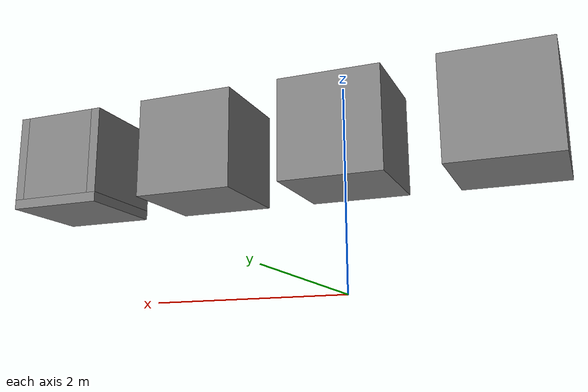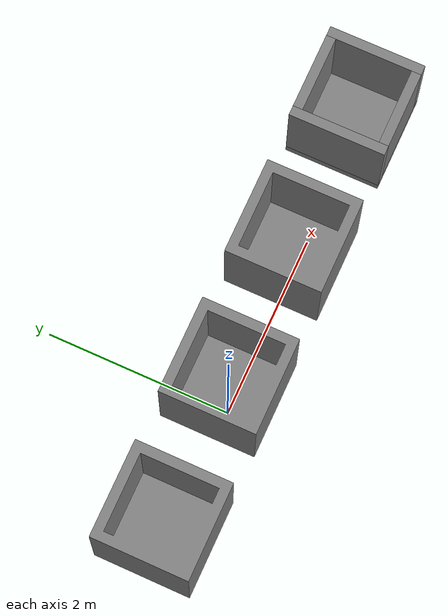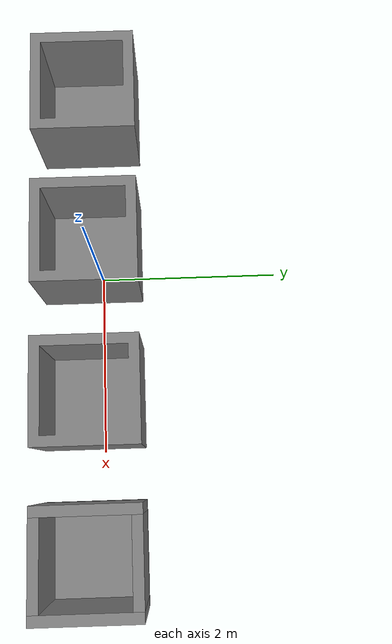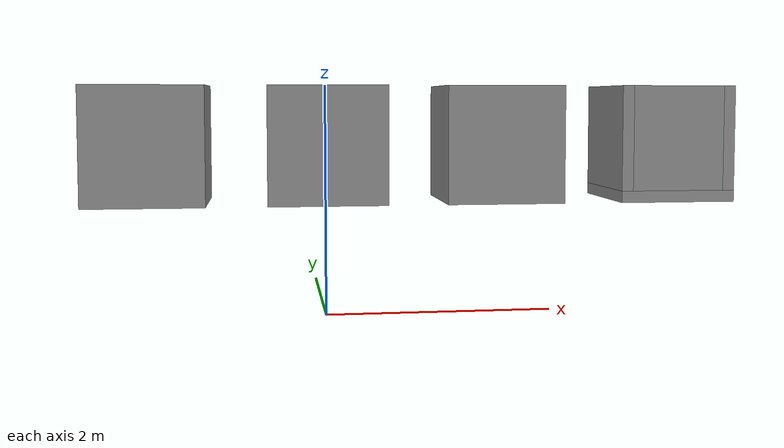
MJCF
<mujoco>
  <default>
    <mesh scale="10 10 10" inertia="exact"/>
  </default>
  <asset>
    <mesh file="cube_cup.obj"/>
    <mesh file="cube_cup_quad.obj"/>
    <mesh file="cube_cup_hi.obj"/>
  </asset>
  <worldbody>
    <light directional="true" diffuse=".6 .6 .6" specular="0.2 0.2 0.2" pos="0 0 4" dir="0 0 -1"/>
    <body pos="-1.5 0 1">
      <geom type="mesh" mesh="cube_cup" density="2"/>
    </body>
    <body pos="0 0 1">
      <geom type="mesh" mesh="cube_cup_quad" density="2"/>
    </body>
    <body pos="1.5 0 1">
      <geom type="mesh" mesh="cube_cup_hi" density="2"/>
    </body>
    <body pos="3 0 1">
      <geom type="box" pos="0 0 0.05" size=".5 .5 .05" density="2"/>
      <geom type="box" pos="-.45 0 .55" size=".05 .5 .45" density="2"/>
      <geom type="box" pos=" .45 0 .55" size=".05 .5 .45" density="2"/>
      <geom type="box" pos="0 -.45 .55" size=".4 .05 .45" density="2"/>
      <geom type="box" pos="0 .45 .55" size=".4 .05 .45" density="2"/>
    </body>
  </worldbody>
</mujoco>
